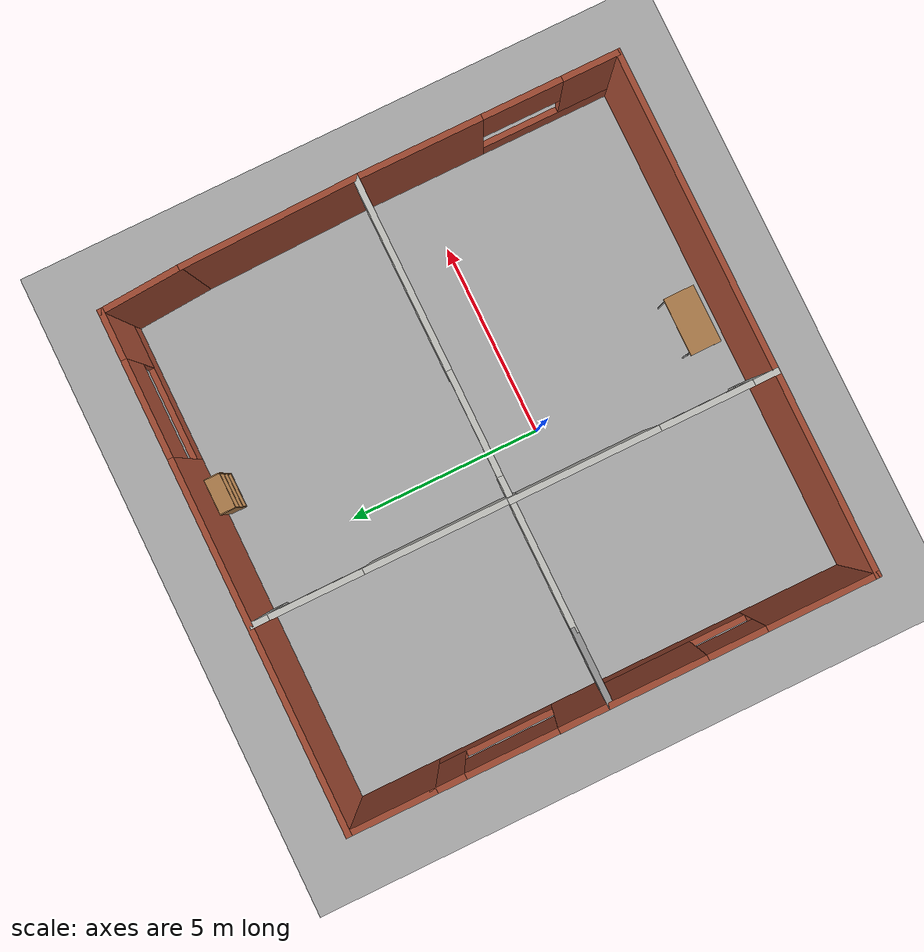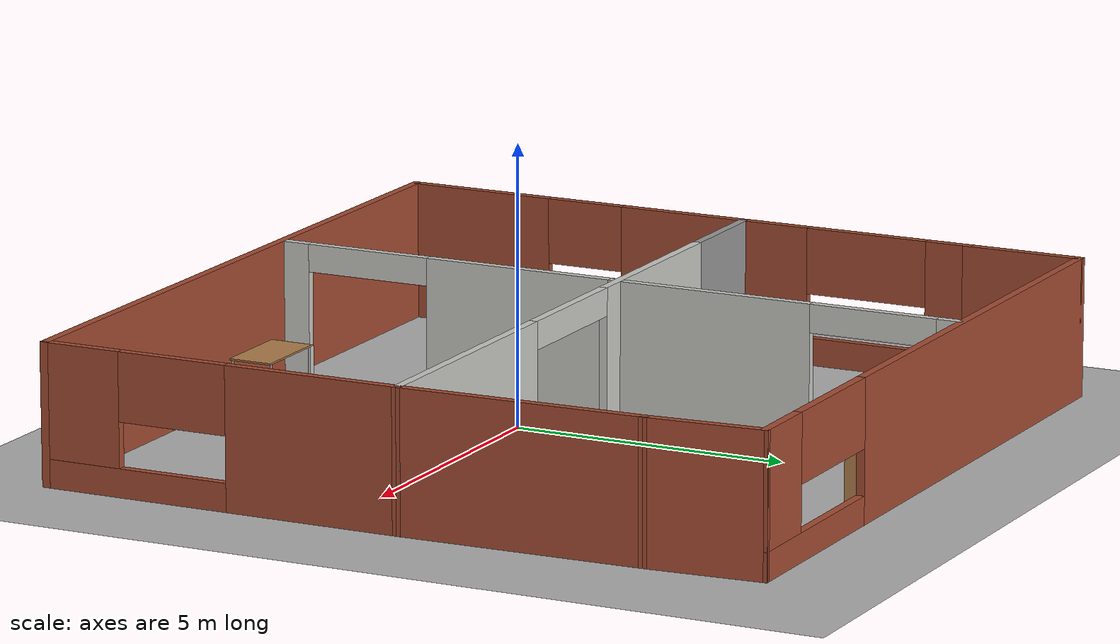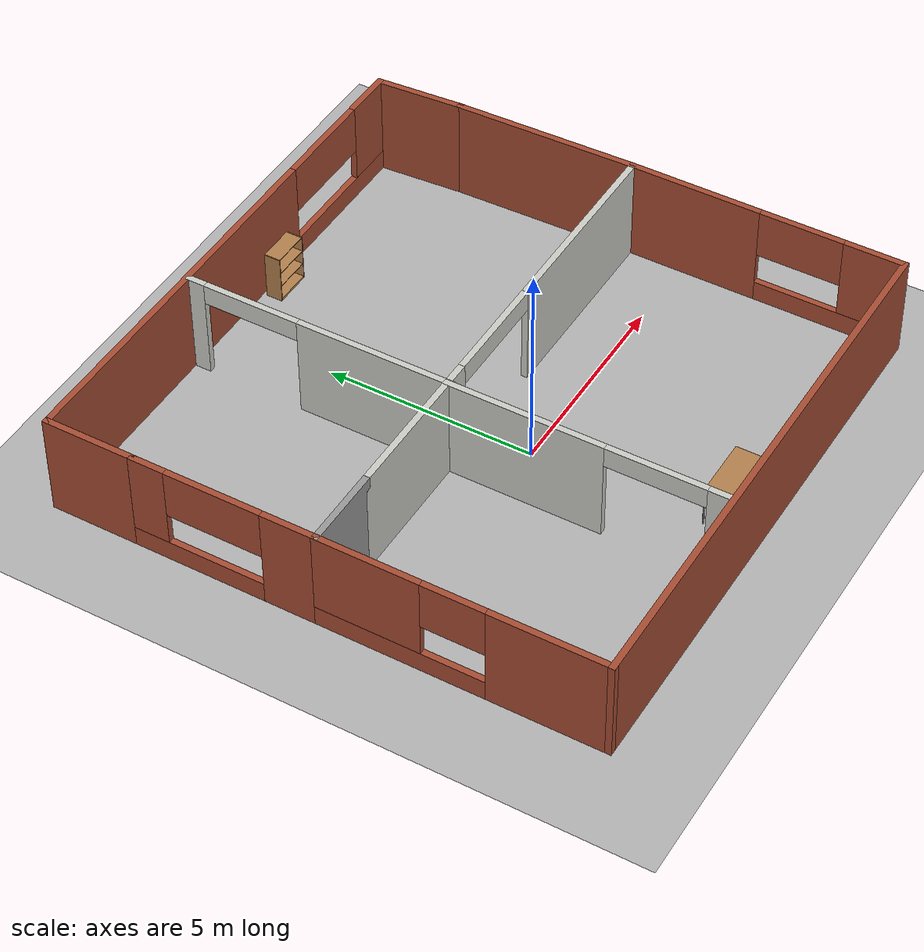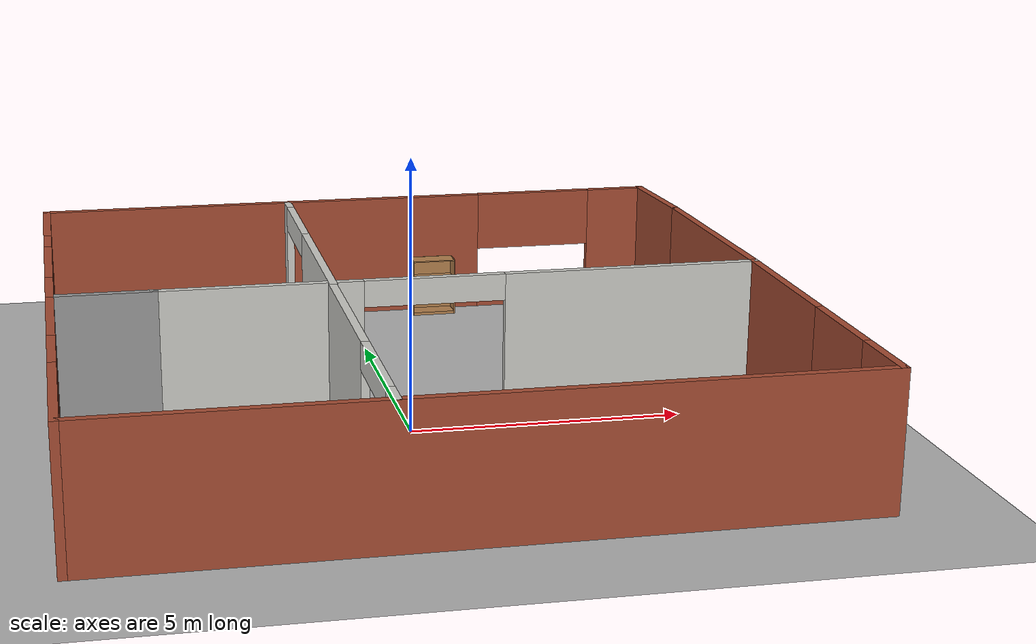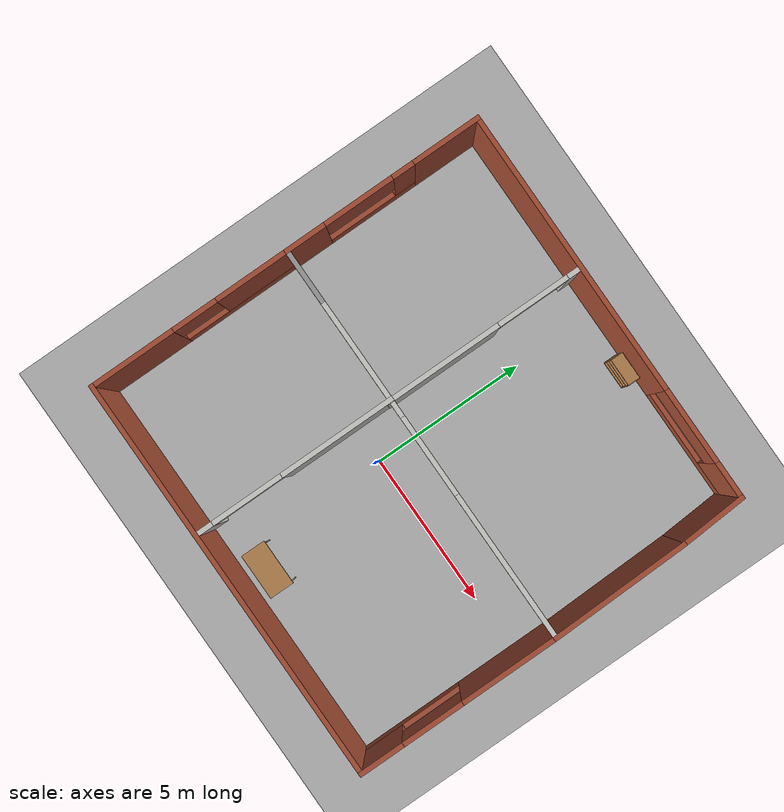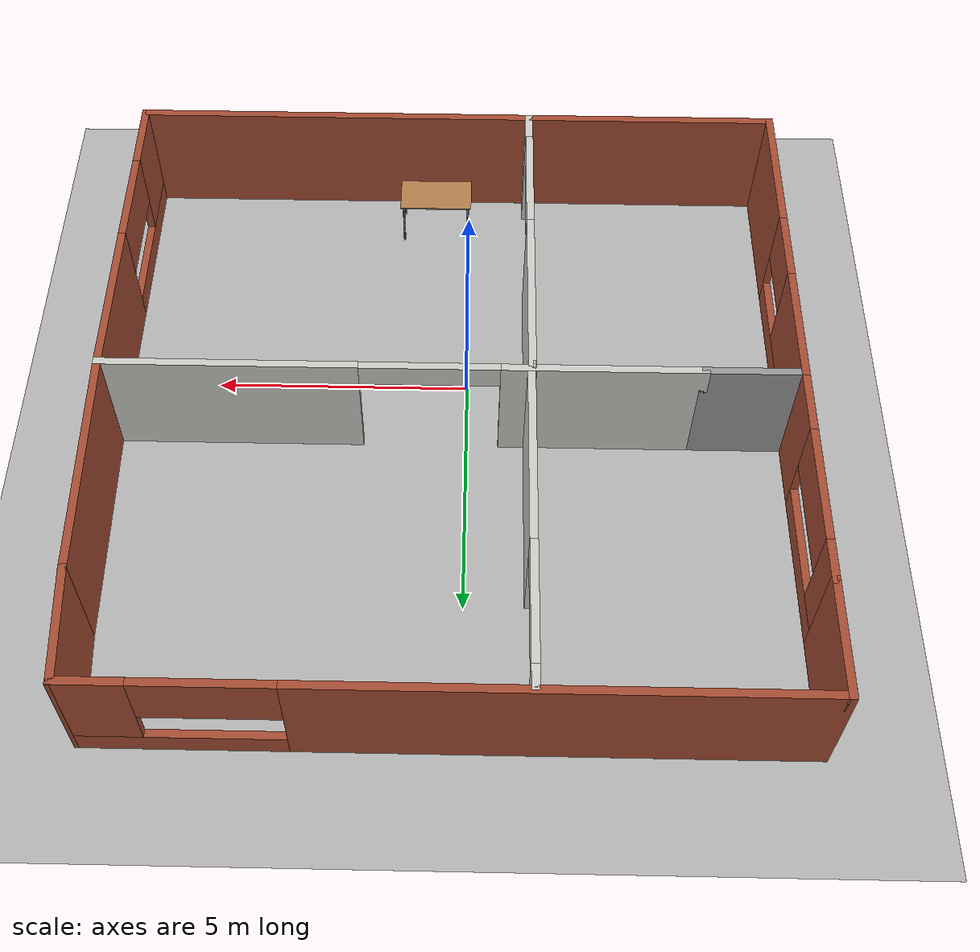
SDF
<sdf version="1.9">
 <world name="default">
  <gravity>0 0 -9.8</gravity>
  <magnetic_field>6e-06 2.3e-05 -4.2e-05</magnetic_field>
  <atmosphere type="adiabatic"/>
  <physics type="ode">
   <max_step_size>0.001</max_step_size>
   <real_time_factor>1</real_time_factor>
   <real_time_update_rate>1000</real_time_update_rate>
  </physics>
  <scene><ambient>0.4 0.4 0.4 1</ambient><background>0.7 0.7 0.7 1</background><shadows>true</shadows></scene>
  <model name="maison">
   <pose>0.305447 1.24522 0 0 -0 0</pose>
   <link name="Wall_16">
    <collision name="Wall_16_Collision">
     <geometry><box><size>4.53836 0.15 2.5</size></box></geometry>
     <pose>0 0 1.25 0 -0 0</pose>
    </collision>
    <visual name="Wall_16_Visual">
     <pose>0 0 1.25 0 -0 0</pose>
     <geometry><box><size>4.53836 0.15 2.5</size></box></geometry>
     <material>
      <script><uri>file://media/materials/scripts/gazebo.material</uri><name>Gazebo/Bricks</name></script>
      <ambient>1 1 1 1</ambient>
     </material>
     <meta><layer>0</layer></meta>
    </visual>
    <pose>6.49515 2.26603 0 0 0 -1.54621</pose>
    <inertial>
     <mass>1</mass>
     <inertia><ixx>1</ixx><ixy>0</ixy><ixz>0</ixz><iyy>1</iyy><iyz>0</iyz><izz>1</izz></inertia>
    </inertial>
   </link>
   <link name="Wall_20">
    <pose>-1.51879 -3.22046 0 0 0 -1.5708</pose>
    <visual name="Wall_20_Visual_0">
     <pose>-1.48487 0 1.25 0 -0 0</pose>
     <geometry><box><size>3.78026 0.15 2.5</size></box></geometry>
     <material>
      <script><uri>file://media/materials/scripts/gazebo.material</uri><name>Gazebo/CeilingTiled</name></script>
      <ambient>1 1 1 1</ambient>
     </material>
     <meta><layer>0</layer></meta>
    </visual>
    <collision name="Wall_20_Collision_0">
     <geometry><box><size>3.78026 0.15 2.5</size></box></geometry>
     <pose>-1.48487 0 1.25 0 -0 0</pose>
    </collision>
    <visual name="Wall_20_Visual_1">
     <pose>3.05773 0 1.25 0 -0 0</pose>
     <geometry><box><size>0.634539 0.15 2.5</size></box></geometry>
     <material>
      <script><uri>file://media/materials/scripts/gazebo.material</uri><name>Gazebo/CeilingTiled</name></script>
      <ambient>1 1 1 1</ambient>
     </material>
     <meta><layer>0</layer></meta>
    </visual>
    <collision name="Wall_20_Collision_1">
     <geometry><box><size>0.634539 0.15 2.5</size></box></geometry>
     <pose>3.05773 0 1.25 0 -0 0</pose>
    </collision>
    <visual name="Wall_20_Visual_2">
     <pose>1.57286 0 2.25 0 -0 0</pose>
     <geometry><box><size>2.3352 0.15 0.5</size></box></geometry>
     <material>
      <script><uri>file://media/materials/scripts/gazebo.material</uri><name>Gazebo/CeilingTiled</name></script>
      <ambient>1 1 1 1</ambient>
     </material>
     <meta><layer>0</layer></meta>
    </visual>
    <collision name="Wall_20_Collision_2">
     <geometry><box><size>2.3352 0.15 0.5</size></box></geometry>
     <pose>1.57286 0 2.25 0 -0 0</pose>
    </collision>
    <inertial>
     <mass>1</mass>
     <inertia><ixx>1</ixx><ixy>0</ixy><ixz>0</ixz><iyy>1</iyy><iyz>0</iyz><izz>1</izz></inertia>
    </inertial>
   </link>
   <link name="Wall_24">
    <pose>-6.55091 2.24751 0 0 -0 1.5708</pose>
    <visual name="Wall_24_Visual_0">
     <pose>-1.57482 0 1.25 0 -0 0</pose>
     <geometry><box><size>1.35037 0.15 2.5</size></box></geometry>
     <material>
      <script><uri>file://media/materials/scripts/gazebo.material</uri><name>Gazebo/Bricks</name></script>
      <ambient>1 1 1 1</ambient>
     </material>
     <meta><layer>0</layer></meta>
    </visual>
    <collision name="Wall_24_Collision_0">
     <geometry><box><size>1.35037 0.15 2.5</size></box></geometry>
     <pose>-1.57482 0 1.25 0 -0 0</pose>
    </collision>
    <visual name="Wall_24_Visual_1">
     <pose>0.675184 0 0.25 0 -0 0</pose>
     <geometry><box><size>3.14963 0.15 0.5</size></box></geometry>
     <material>
      <script><uri>file://media/materials/scripts/gazebo.material</uri><name>Gazebo/Bricks</name></script>
      <ambient>1 1 1 1</ambient>
     </material>
     <meta><layer>0</layer></meta>
    </visual>
    <collision name="Wall_24_Collision_1">
     <geometry><box><size>3.14963 0.15 0.5</size></box></geometry>
     <pose>0.675184 0 0.25 0 -0 0</pose>
    </collision>
    <visual name="Wall_24_Visual_2">
     <pose>1.82038 0 1.5 0 -0 0</pose>
     <geometry><box><size>0.859232 0.15 2</size></box></geometry>
     <material>
      <script><uri>file://media/materials/scripts/gazebo.material</uri><name>Gazebo/Bricks</name></script>
      <ambient>1 1 1 1</ambient>
     </material>
     <meta><layer>0</layer></meta>
    </visual>
    <collision name="Wall_24_Collision_2">
     <geometry><box><size>0.859232 0.15 2</size></box></geometry>
     <pose>1.82038 0 1.5 0 -0 0</pose>
    </collision>
    <visual name="Wall_24_Visual_3">
     <pose>0.245568 0 1.9 0 -0 0</pose>
     <geometry><box><size>2.2904 0.15 1.2</size></box></geometry>
     <material>
      <script><uri>file://media/materials/scripts/gazebo.material</uri><name>Gazebo/Bricks</name></script>
      <ambient>1 1 1 1</ambient>
     </material>
     <meta><layer>0</layer></meta>
    </visual>
    <collision name="Wall_24_Collision_3">
     <geometry><box><size>2.2904 0.15 1.2</size></box></geometry>
     <pose>0.245568 0 1.9 0 -0 0</pose>
    </collision>
    <inertial>
     <mass>1</mass>
     <inertia><ixx>1</ixx><ixy>0</ixy><ixz>0</ixz><iyy>1</iyy><iyz>0</iyz><izz>1</izz></inertia>
    </inertial>
   </link>
   <link name="Wall_29">
    <collision name="Wall_29_Collision">
     <geometry><box><size>2.25 0.15 2.5</size></box></geometry>
     <pose>0 0 1.25 0 -0 0</pose>
    </collision>
    <visual name="Wall_29_Visual">
     <pose>0 0 1.25 0 -0 0</pose>
     <geometry><box><size>2.25 0.15 2.5</size></box></geometry>
     <material>
      <script><uri>file://media/materials/scripts/gazebo.material</uri><name>Gazebo/Bricks</name></script>
      <ambient>1 1 1 1</ambient>
     </material>
     <meta><layer>0</layer></meta>
    </visual>
    <pose>-6.55091 5.47251 0 0 -0 1.5708</pose>
    <inertial>
     <mass>1</mass>
     <inertia><ixx>1</ixx><ixy>0</ixy><ixz>0</ixz><iyy>1</iyy><iyz>0</iyz><izz>1</izz></inertia>
    </inertial>
   </link>
   <link name="Wall_30">
    <pose>-0.12591 6.52251 0 0 -0 0</pose>
    <visual name="Wall_30_Visual_0">
     <pose>-1.86815 0 1.25 0 -0 0</pose>
     <geometry><box><size>9.2637 0.15 2.5</size></box></geometry>
     <material>
      <script><uri>file://media/materials/scripts/gazebo.material</uri><name>Gazebo/Bricks</name></script>
      <ambient>1 1 1 1</ambient>
     </material>
     <meta><layer>0</layer></meta>
    </visual>
    <collision name="Wall_30_Collision_0">
     <geometry><box><size>9.2637 0.15 2.5</size></box></geometry>
     <pose>-1.86815 0 1.25 0 -0 0</pose>
    </collision>
    <visual name="Wall_30_Visual_1">
     <pose>4.63185 0 0.25 0 -0 0</pose>
     <geometry><box><size>3.7363 0.15 0.5</size></box></geometry>
     <material>
      <script><uri>file://media/materials/scripts/gazebo.material</uri><name>Gazebo/Bricks</name></script>
      <ambient>1 1 1 1</ambient>
     </material>
     <meta><layer>0</layer></meta>
    </visual>
    <collision name="Wall_30_Collision_1">
     <geometry><box><size>3.7363 0.15 0.5</size></box></geometry>
     <pose>4.63185 0 0.25 0 -0 0</pose>
    </collision>
    <visual name="Wall_30_Visual_2">
     <pose>5.85985 0 1.5 0 -0 0</pose>
     <geometry><box><size>1.28029 0.15 2</size></box></geometry>
     <material>
      <script><uri>file://media/materials/scripts/gazebo.material</uri><name>Gazebo/Bricks</name></script>
      <ambient>1 1 1 1</ambient>
     </material>
     <meta><layer>0</layer></meta>
    </visual>
    <collision name="Wall_30_Collision_2">
     <geometry><box><size>1.28029 0.15 2</size></box></geometry>
     <pose>5.85985 0 1.5 0 -0 0</pose>
    </collision>
    <visual name="Wall_30_Visual_3">
     <pose>3.99171 0 1.9 0 -0 0</pose>
     <geometry><box><size>2.456 0.15 1.2</size></box></geometry>
     <material>
      <script><uri>file://media/materials/scripts/gazebo.material</uri><name>Gazebo/Bricks</name></script>
      <ambient>1 1 1 1</ambient>
     </material>
     <meta><layer>0</layer></meta>
    </visual>
    <collision name="Wall_30_Collision_3">
     <geometry><box><size>2.456 0.15 1.2</size></box></geometry>
     <pose>3.99171 0 1.9 0 -0 0</pose>
    </collision>
    <inertial>
     <mass>1</mass>
     <inertia><ixx>1</ixx><ixy>0</ixy><ixz>0</ixz><iyy>1</iyy><iyz>0</iyz><izz>1</izz></inertia>
    </inertial>
   </link>
   <link name="Wall_31">
    <collision name="Wall_31_Collision">
     <geometry><box><size>2.21786 0.15 2.5</size></box></geometry>
     <pose>0 0 1.25 0 -0 0</pose>
    </collision>
    <visual name="Wall_31_Visual">
     <pose>0 0 1.25 0 -0 0</pose>
     <geometry><box><size>2.21786 0.15 2.5</size></box></geometry>
     <material>
      <script><uri>file://media/materials/scripts/gazebo.material</uri><name>Gazebo/Bricks</name></script>
      <ambient>1 1 1 1</ambient>
     </material>
     <meta><layer>0</layer></meta>
    </visual>
    <pose>6.37015 5.49103 0 0 0 -1.50202</pose>
    <inertial>
     <mass>1</mass>
     <inertia><ixx>1</ixx><ixy>0</ixy><ixz>0</ixz><iyy>1</iyy><iyz>0</iyz><izz>1</izz></inertia>
    </inertial>
   </link>
   <link name="Wall_36">
    <pose>-1.50319 3.22014 0 0 0 -1.5708</pose>
    <visual name="Wall_36_Visual_0">
     <pose>-3.07587 0 1.25 0 -0 0</pose>
     <geometry><box><size>0.468261 0.15 2.5</size></box></geometry>
     <material>
      <script><uri>file://media/materials/scripts/gazebo.material</uri><name>Gazebo/CeilingTiled</name></script>
      <ambient>1 1 1 1</ambient>
     </material>
     <meta><layer>0</layer></meta>
    </visual>
    <collision name="Wall_36_Collision_0">
     <geometry><box><size>0.468261 0.15 2.5</size></box></geometry>
     <pose>-3.07587 0 1.25 0 -0 0</pose>
    </collision>
    <visual name="Wall_36_Visual_1">
     <pose>1.40173 0 1.25 0 -0 0</pose>
     <geometry><box><size>3.81654 0.15 2.5</size></box></geometry>
     <material>
      <script><uri>file://media/materials/scripts/gazebo.material</uri><name>Gazebo/CeilingTiled</name></script>
      <ambient>1 1 1 1</ambient>
     </material>
     <meta><layer>0</layer></meta>
    </visual>
    <collision name="Wall_36_Collision_1">
     <geometry><box><size>3.81654 0.15 2.5</size></box></geometry>
     <pose>1.40173 0 1.25 0 -0 0</pose>
    </collision>
    <visual name="Wall_36_Visual_2">
     <pose>-1.67414 0 2.25 0 -0 0</pose>
     <geometry><box><size>2.3352 0.15 0.5</size></box></geometry>
     <material>
      <script><uri>file://media/materials/scripts/gazebo.material</uri><name>Gazebo/CeilingTiled</name></script>
      <ambient>1 1 1 1</ambient>
     </material>
     <meta><layer>0</layer></meta>
    </visual>
    <collision name="Wall_36_Collision_2">
     <geometry><box><size>2.3352 0.15 0.5</size></box></geometry>
     <pose>-1.67414 0 2.25 0 -0 0</pose>
    </collision>
    <inertial>
     <mass>1</mass>
     <inertia><ixx>1</ixx><ixy>0</ixy><ixz>0</ixz><iyy>1</iyy><iyz>0</iyz><izz>1</izz></inertia>
    </inertial>
   </link>
   <link name="Wall_4">
    <pose>0.913765 0.072512 0 0 -0 0</pose>
    <visual name="Wall_4_Visual_0">
     <pose>-3.77795 0 1.25 0 -0 0</pose>
     <geometry><box><size>3.86476 0.15 2.5</size></box></geometry>
     <material>
      <script><uri>file://media/materials/scripts/gazebo.material</uri><name>Gazebo/CeilingTiled</name></script>
      <ambient>1 1 1 1</ambient>
     </material>
     <meta><layer>0</layer></meta>
    </visual>
    <collision name="Wall_4_Collision_0">
     <geometry><box><size>3.86476 0.15 2.5</size></box></geometry>
     <pose>-3.77795 0 1.25 0 -0 0</pose>
    </collision>
    <visual name="Wall_4_Visual_1">
     <pose>3.25238 0 1.25 0 -0 0</pose>
     <geometry><box><size>4.91589 0.15 2.5</size></box></geometry>
     <material>
      <script><uri>file://media/materials/scripts/gazebo.material</uri><name>Gazebo/CeilingTiled</name></script>
      <ambient>1 1 1 1</ambient>
     </material>
     <meta><layer>0</layer></meta>
    </visual>
    <collision name="Wall_4_Collision_1">
     <geometry><box><size>4.91589 0.15 2.5</size></box></geometry>
     <pose>3.25238 0 1.25 0 -0 0</pose>
    </collision>
    <visual name="Wall_4_Visual_2">
     <pose>-0.52557 0 2.25 0 -0 0</pose>
     <geometry><box><size>2.64 0.15 0.5</size></box></geometry>
     <material>
      <script><uri>file://media/materials/scripts/gazebo.material</uri><name>Gazebo/CeilingTiled</name></script>
      <ambient>1 1 1 1</ambient>
     </material>
     <meta><layer>0</layer></meta>
    </visual>
    <collision name="Wall_4_Collision_2">
     <geometry><box><size>2.64 0.15 0.5</size></box></geometry>
     <pose>-0.52557 0 2.25 0 -0 0</pose>
    </collision>
    <inertial>
     <mass>1</mass>
     <inertia><ixx>1</ixx><ixy>0</ixy><ixz>0</ixz><iyy>1</iyy><iyz>0</iyz><izz>1</izz></inertia>
    </inertial>
   </link>
   <link name="Wall_5">
    <pose>6.54909 -3.22749 0 0 0 -1.5708</pose>
    <visual name="Wall_5_Visual_0">
     <pose>-1.75318 0 1.25 0 -0 0</pose>
     <geometry><box><size>3.24363 0.15 2.5</size></box></geometry>
     <material>
      <script><uri>file://media/materials/scripts/gazebo.material</uri><name>Gazebo/Bricks</name></script>
      <ambient>1 1 1 1</ambient>
     </material>
     <meta><layer>0</layer></meta>
    </visual>
    <collision name="Wall_5_Collision_0">
     <geometry><box><size>3.24363 0.15 2.5</size></box></geometry>
     <pose>-1.75318 0 1.25 0 -0 0</pose>
    </collision>
    <visual name="Wall_5_Visual_1">
     <pose>1.62182 0 0.25 0 -0 0</pose>
     <geometry><box><size>3.50637 0.15 0.5</size></box></geometry>
     <material>
      <script><uri>file://media/materials/scripts/gazebo.material</uri><name>Gazebo/Bricks</name></script>
      <ambient>1 1 1 1</ambient>
     </material>
     <meta><layer>0</layer></meta>
    </visual>
    <collision name="Wall_5_Collision_1">
     <geometry><box><size>3.50637 0.15 0.5</size></box></geometry>
     <pose>1.62182 0 0.25 0 -0 0</pose>
    </collision>
    <visual name="Wall_5_Visual_2">
     <pose>2.62902 0 1.5 0 -0 0</pose>
     <geometry><box><size>1.49197 0.15 2</size></box></geometry>
     <material>
      <script><uri>file://media/materials/scripts/gazebo.material</uri><name>Gazebo/Bricks</name></script>
      <ambient>1 1 1 1</ambient>
     </material>
     <meta><layer>0</layer></meta>
    </visual>
    <collision name="Wall_5_Collision_2">
     <geometry><box><size>1.49197 0.15 2</size></box></geometry>
     <pose>2.62902 0 1.5 0 -0 0</pose>
    </collision>
    <visual name="Wall_5_Visual_3">
     <pose>0.875832 0 1.9 0 -0 0</pose>
     <geometry><box><size>2.0144 0.15 1.2</size></box></geometry>
     <material>
      <script><uri>file://media/materials/scripts/gazebo.material</uri><name>Gazebo/Bricks</name></script>
      <ambient>1 1 1 1</ambient>
     </material>
     <meta><layer>0</layer></meta>
    </visual>
    <collision name="Wall_5_Collision_3">
     <geometry><box><size>2.0144 0.15 1.2</size></box></geometry>
     <pose>0.875832 0 1.9 0 -0 0</pose>
    </collision>
    <inertial>
     <mass>1</mass>
     <inertia><ixx>1</ixx><ixy>0</ixy><ixz>0</ixz><iyy>1</iyy><iyz>0</iyz><izz>1</izz></inertia>
    </inertial>
   </link>
   <link name="Wall_7">
    <collision name="Wall_7_Collision">
     <geometry><box><size>13.25 0.15 2.5</size></box></geometry>
     <pose>0 0 1.25 0 -0 0</pose>
    </collision>
    <visual name="Wall_7_Visual">
     <pose>0 0 1.25 0 -0 0</pose>
     <geometry><box><size>13.25 0.15 2.5</size></box></geometry>
     <material>
      <script><uri>file://media/materials/scripts/gazebo.material</uri><name>Gazebo/Bricks</name></script>
      <ambient>1 1 1 1</ambient>
     </material>
     <meta><layer>0</layer></meta>
    </visual>
    <pose>-0.00091 -6.52749 0 0 -0 3.14159</pose>
    <inertial>
     <mass>1</mass>
     <inertia><ixx>1</ixx><ixy>0</ixy><ixz>0</ixz><iyy>1</iyy><iyz>0</iyz><izz>1</izz></inertia>
    </inertial>
   </link>
   <link name="Wall_8">
    <pose>-6.55091 -3.22749 0 0 -0 1.5708</pose>
    <visual name="Wall_8_Visual_0">
     <pose>-1.96662 0 1.25 0 -0 0</pose>
     <geometry><box><size>2.81677 0.15 2.5</size></box></geometry>
     <material>
      <script><uri>file://media/materials/scripts/gazebo.material</uri><name>Gazebo/Bricks</name></script>
      <ambient>1 1 1 1</ambient>
     </material>
     <meta><layer>0</layer></meta>
    </visual>
    <collision name="Wall_8_Collision_0">
     <geometry><box><size>2.81677 0.15 2.5</size></box></geometry>
     <pose>-1.96662 0 1.25 0 -0 0</pose>
    </collision>
    <visual name="Wall_8_Visual_1">
     <pose>1.40838 0 0.25 0 -0 0</pose>
     <geometry><box><size>3.93323 0.15 0.5</size></box></geometry>
     <material>
      <script><uri>file://media/materials/scripts/gazebo.material</uri><name>Gazebo/Bricks</name></script>
      <ambient>1 1 1 1</ambient>
     </material>
     <meta><layer>0</layer></meta>
    </visual>
    <collision name="Wall_8_Collision_1">
     <geometry><box><size>3.93323 0.15 0.5</size></box></geometry>
     <pose>1.40838 0 0.25 0 -0 0</pose>
    </collision>
    <visual name="Wall_8_Visual_2">
     <pose>2.13958 0 1.5 0 -0 0</pose>
     <geometry><box><size>2.47083 0.15 2</size></box></geometry>
     <material>
      <script><uri>file://media/materials/scripts/gazebo.material</uri><name>Gazebo/Bricks</name></script>
      <ambient>1 1 1 1</ambient>
     </material>
     <meta><layer>0</layer></meta>
    </visual>
    <collision name="Wall_8_Collision_2">
     <geometry><box><size>2.47083 0.15 2</size></box></geometry>
     <pose>2.13958 0 1.5 0 -0 0</pose>
    </collision>
    <visual name="Wall_8_Visual_3">
     <pose>0.172968 0 1.9 0 -0 0</pose>
     <geometry><box><size>1.4624 0.15 1.2</size></box></geometry>
     <material>
      <script><uri>file://media/materials/scripts/gazebo.material</uri><name>Gazebo/Bricks</name></script>
      <ambient>1 1 1 1</ambient>
     </material>
     <meta><layer>0</layer></meta>
    </visual>
    <collision name="Wall_8_Collision_3">
     <geometry><box><size>1.4624 0.15 1.2</size></box></geometry>
     <pose>0.172968 0 1.9 0 -0 0</pose>
    </collision>
    <inertial>
     <mass>1</mass>
     <inertia><ixx>1</ixx><ixy>0</ixy><ixz>0</ixz><iyy>1</iyy><iyz>0</iyz><izz>1</izz></inertia>
    </inertial>
   </link>
   <link name="Wall_9">
    <collision name="Wall_9_Collision">
     <geometry><box><size>1.97935 0.15 2.5</size></box></geometry>
     <pose>0 0 1.25 0 -0 0</pose>
    </collision>
    <visual name="Wall_9_Visual">
     <pose>0 0 1.25 0 -0 0</pose>
     <geometry><box><size>1.97935 0.15 2.5</size></box></geometry>
     <material>
      <script><uri>file://media/materials/scripts/gazebo.material</uri><name>Gazebo/Grey</name></script>
      <ambient>1 1 1 1</ambient>
     </material>
     <meta><layer>0</layer></meta>
    </visual>
    <pose>-5.63624 0.072512 0 0 -0 0</pose>
    <inertial>
     <mass>1</mass>
     <inertia><ixx>1</ixx><ixy>0</ixy><ixz>0</ixz><iyy>1</iyy><iyz>0</iyz><izz>1</izz></inertia>
    </inertial>
   </link>
   <static>true</static>
  </model>
  <model name="Bookshelf">
   <static>true</static>
   <link name="link">
    <inertial>
     <mass>1</mass>
     <inertia><ixx>1</ixx><ixy>0</ixy><ixz>0</ixz><iyy>1</iyy><iyz>0</iyz><izz>1</izz></inertia>
    </inertial>
    <collision name="back">
     <pose>0 0.005 0.6 0 0 0</pose>
     <geometry><box><size>0.9 0.01 1.2</size></box></geometry>
    </collision>
    <visual name="visual1">
     <pose>0 0.005 0.6 0 0 0</pose>
     <geometry><box><size>0.9 0.01 1.2</size></box></geometry>
     <material>
      <diffuse>1 1 1 1</diffuse>
      <script><uri>file://media/materials/scripts/gazebo.material</uri><name>Gazebo/Wood</name></script>
      <pbr>
       <metal>
        <albedo_map>https://fuel.gazebosim.org/1.0/openrobotics/models/bookshelf/4/files/bookshelf_diffuse.jpg</albedo_map>
       </metal>
      </pbr>
     </material>
    </visual>
    <collision name="left_side">
     <pose>0.45 -0.195 0.6 0 0 0</pose>
     <geometry><box><size>0.02 0.4 1.2</size></box></geometry>
    </collision>
    <visual name="visual2">
     <pose>0.45 -0.195 0.6 0 0 0</pose>
     <geometry><box><size>0.02 0.4 1.2</size></box></geometry>
     <material>
      <diffuse>1 1 1 1</diffuse>
      <script><uri>file://media/materials/scripts/gazebo.material</uri><name>Gazebo/Wood</name></script>
      <pbr>
       <metal>
        <albedo_map>https://fuel.gazebosim.org/1.0/openrobotics/models/bookshelf/4/files/bookshelf_diffuse.jpg</albedo_map>
       </metal>
      </pbr>
     </material>
    </visual>
    <collision name="right_side">
     <pose>-0.45 -0.195 0.6 0 0 0</pose>
     <geometry><box><size>0.02 0.4 1.2</size></box></geometry>
    </collision>
    <visual name="visual3">
     <pose>-0.45 -0.195 0.6 0 0 0</pose>
     <geometry><box><size>0.02 0.4 1.2</size></box></geometry>
     <material>
      <diffuse>1 1 1 1</diffuse>
      <script><uri>file://media/materials/scripts/gazebo.material</uri><name>Gazebo/Wood</name></script>
      <pbr>
       <metal>
        <albedo_map>https://fuel.gazebosim.org/1.0/openrobotics/models/bookshelf/4/files/bookshelf_diffuse.jpg</albedo_map>
       </metal>
      </pbr>
     </material>
    </visual>
    <collision name="bottom">
     <pose>0 -0.195 0.03 0 0 0</pose>
     <geometry><box><size>0.88 0.4 0.06</size></box></geometry>
    </collision>
    <visual name="visual4">
     <pose>0 -0.195 0.03 0 0 0</pose>
     <geometry><box><size>0.88 0.4 0.06</size></box></geometry>
     <material>
      <diffuse>1 1 1 1</diffuse>
      <script><uri>file://media/materials/scripts/gazebo.material</uri><name>Gazebo/Wood</name></script>
      <pbr>
       <metal>
        <albedo_map>https://fuel.gazebosim.org/1.0/openrobotics/models/bookshelf/4/files/bookshelf_diffuse.jpg</albedo_map>
       </metal>
      </pbr>
     </material>
    </visual>
    <collision name="top">
     <pose>0 -0.195 1.19 0 0 0</pose>
     <geometry><box><size>0.88 0.4 0.02</size></box></geometry>
    </collision>
    <visual name="visual5">
     <pose>0 -0.195 1.19 0 0 0</pose>
     <geometry><box><size>0.88 0.4 0.02</size></box></geometry>
     <material>
      <diffuse>1 1 1 1</diffuse>
      <script><uri>file://media/materials/scripts/gazebo.material</uri><name>Gazebo/Wood</name></script>
      <pbr>
       <metal>
        <albedo_map>https://fuel.gazebosim.org/1.0/openrobotics/models/bookshelf/4/files/bookshelf_diffuse.jpg</albedo_map>
       </metal>
      </pbr>
     </material>
    </visual>
    <collision name="low_shelf">
     <pose>0 -0.195 0.43 0 0 0</pose>
     <geometry><box><size>0.88 0.4 0.02</size></box></geometry>
    </collision>
    <visual name="visual6">
     <pose>0 -0.195 0.43 0 0 0</pose>
     <geometry><box><size>0.88 0.4 0.02</size></box></geometry>
     <material>
      <diffuse>1 1 1 1</diffuse>
      <script><uri>file://media/materials/scripts/gazebo.material</uri><name>Gazebo/Wood</name></script>
      <pbr>
       <metal>
        <albedo_map>https://fuel.gazebosim.org/1.0/openrobotics/models/bookshelf/4/files/bookshelf_diffuse.jpg</albedo_map>
       </metal>
      </pbr>
     </material>
    </visual>
    <collision name="high_shelf">
     <pose>0 -0.195 0.8 0 0 0</pose>
     <geometry><box><size>0.88 0.4 0.02</size></box></geometry>
    </collision>
    <visual name="visual7">
     <pose>0 -0.195 0.8 0 0 0</pose>
     <geometry><box><size>0.88 0.4 0.02</size></box></geometry>
     <material>
      <diffuse>1 1 1 1</diffuse>
      <script><uri>file://media/materials/scripts/gazebo.material</uri><name>Gazebo/Wood</name></script>
      <pbr>
       <metal>
        <albedo_map>https://fuel.gazebosim.org/1.0/openrobotics/models/bookshelf/4/files/bookshelf_diffuse.jpg</albedo_map>
       </metal>
      </pbr>
     </material>
    </visual>
   </link>
   <pose>1.87757 7.60193 0 0 -0 0</pose>
  </model>
  <model name="Table">
   <static>true</static>
   <link name="link">
    <collision name="surface">
     <pose>0 0 1.0 0 0 0</pose>
     <geometry><box><size>1.5 0.8 0.03</size></box></geometry>
     <surface><friction><ode><mu>0.59999999999999998</mu><mu2>0.59999999999999998</mu2></ode></friction></surface>
    </collision>
    <visual name="visual1">
     <pose>0 0 1.0 0 0 0</pose>
     <geometry><box><size>1.5 0.8 0.03</size></box></geometry>
     <material>
      <diffuse>1 1 1 1</diffuse>
      <script><uri>file://media/materials/scripts/gazebo.material</uri><name>Gazebo/Wood</name></script>
      <pbr>
       <metal>
        <albedo_map>https://fuel.gazebosim.org/1.0/openrobotics/models/table/4/files/Table_Diffuse.jpg</albedo_map>
       </metal>
      </pbr>
     </material>
    </visual>
    <collision name="front_left_leg">
     <pose>0.68 0.38 0.5 0 0 0</pose>
     <geometry><cylinder><radius>0.02</radius><length>1</length></cylinder></geometry>
    </collision>
    <visual name="front_left_leg">
     <pose>0.68 0.38 0.5 0 0 0</pose>
     <geometry><cylinder><radius>0.02</radius><length>1</length></cylinder></geometry>
     <material>
      <diffuse>0.5 0.5 0.5 1</diffuse>
      <script><uri>file://media/materials/scripts/gazebo.material</uri><name>Gazebo/Grey</name></script>
     </material>
    </visual>
    <collision name="front_right_leg">
     <pose>0.68 -0.38 0.5 0 0 0</pose>
     <geometry><cylinder><radius>0.02</radius><length>1</length></cylinder></geometry>
    </collision>
    <visual name="front_right_leg">
     <pose>0.68 -0.38 0.5 0 0 0</pose>
     <geometry><cylinder><radius>0.02</radius><length>1</length></cylinder></geometry>
     <material>
      <diffuse>0.5 0.5 0.5 1</diffuse>
      <script><uri>file://media/materials/scripts/gazebo.material</uri><name>Gazebo/Grey</name></script>
     </material>
    </visual>
    <collision name="back_right_leg">
     <pose>-0.68 -0.38 0.5 0 0 0</pose>
     <geometry><cylinder><radius>0.02</radius><length>1</length></cylinder></geometry>
    </collision>
    <visual name="back_right_leg">
     <pose>-0.68 -0.38 0.5 0 0 0</pose>
     <geometry><cylinder><radius>0.02</radius><length>1</length></cylinder></geometry>
     <material>
      <diffuse>0.5 0.5 0.5 1</diffuse>
      <script><uri>file://media/materials/scripts/gazebo.material</uri><name>Gazebo/Grey</name></script>
     </material>
    </visual>
    <collision name="back_left_leg">
     <pose>-0.68 0.38 0.5 0 0 0</pose>
     <geometry><cylinder><radius>0.02</radius><length>1</length></cylinder></geometry>
    </collision>
    <visual name="back_left_leg">
     <pose>-0.68 0.38 0.5 0 0 0</pose>
     <geometry><cylinder><radius>0.02</radius><length>1</length></cylinder></geometry>
     <material>
      <diffuse>0.5 0.5 0.5 1</diffuse>
      <script><uri>file://media/materials/scripts/gazebo.material</uri><name>Gazebo/Grey</name></script>
     </material>
    </visual>
    <inertial>
     <mass>1</mass>
     <inertia><ixx>1</ixx><ixy>0</ixy><ixz>0</ixz><iyy>1</iyy><iyz>0</iyz><izz>1</izz></inertia>
    </inertial>
   </link>
   <pose>0.727678 -4.4447 0 0 -0 0</pose>
  </model>
  <model name="ground_plane">
   <static>true</static>
   <link name="link">
    <collision name="collision">
     <geometry><plane><normal>0 0 1</normal><size>100 100</size></plane></geometry>
     <surface><friction><ode><mu>100</mu><mu2>50</mu2></ode></friction></surface>
    </collision>
    <visual name="visual">
     <cast_shadows>false</cast_shadows>
     <geometry><plane><normal>0 0 1</normal><size>100 100</size></plane></geometry>
     <material>
      <ambient>0.3 0.3 0.3 1</ambient>
      <diffuse>0.7 0.7 0.7 1</diffuse>
      <specular>0.01 0.01 0.01 1</specular>
     </material>
    </visual>
    <inertial>
     <mass>1</mass>
     <inertia><ixx>1</ixx><ixy>0</ixy><ixz>0</ixz><iyy>1</iyy><iyz>0</iyz><izz>1</izz></inertia>
    </inertial>
   </link>
   <pose>1.58743 2.27337 0 0 -0 0</pose>
  </model>
  <light name="sun" type="directional">
   <pose>3.90971 -3.95664 10 0 -0 0</pose>
   <intensity>1</intensity>
   <direction>-0.5 0.1 -0.9</direction>
   <diffuse>0.8 0.8 0.8 1</diffuse>
   <specular>0.2 0.2 0.2 1</specular>
   <attenuation>
    <range>1000</range>
    <linear>0.01</linear>
    <constant>0.90000000000000002</constant>
    <quadratic>0.001</quadratic>
   </attenuation>
   <spot><inner_angle>0</inner_angle><outer_angle>0</outer_angle><falloff>0</falloff></spot>
  </light>
 </world>
</sdf>
